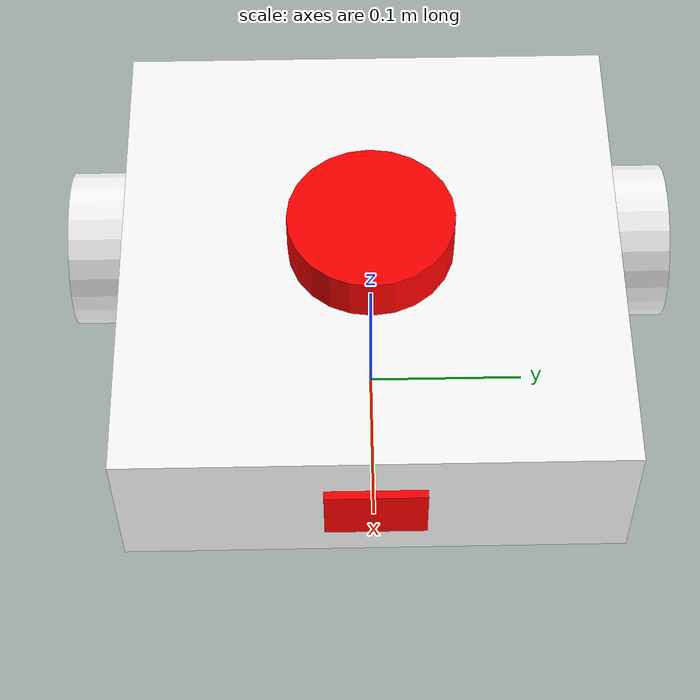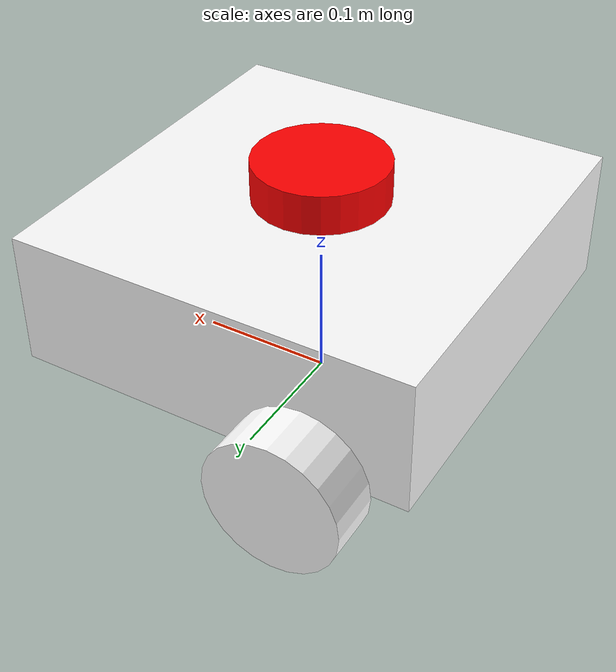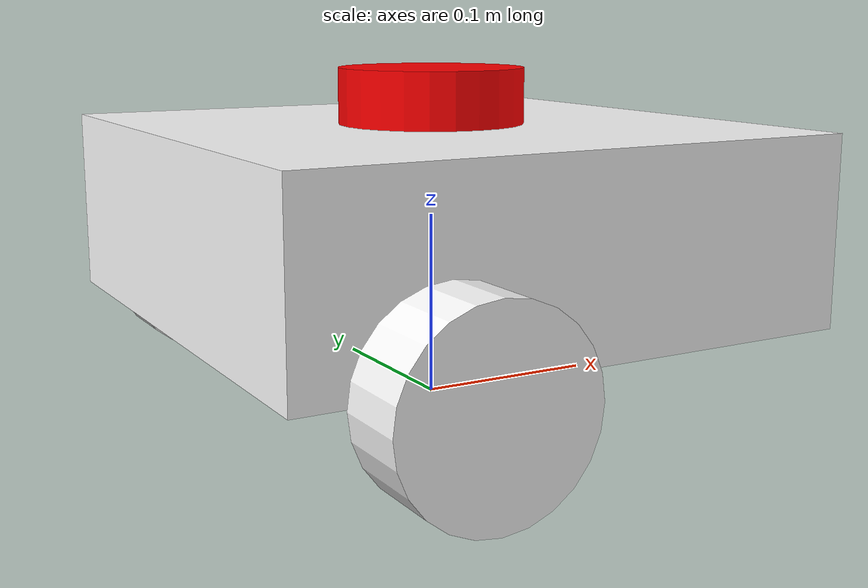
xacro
<?xml version="1.0"?>
<robot name = "my_bot" xmlns:xacro="http://www.ros.org/wiki/xacro">
    <xacro:include filename= "common_properties.xacro"/>
    <xacro:include filename= "bot_body.xacro"/>
    <xacro:include filename= "lidar.xacro"/>
    <xacro:include filename= "camera.xacro"/>
    <xacro:include filename= "gazebo_plugins.xacro"/>
</robot>

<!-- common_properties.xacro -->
<robot xmlns:xacro="http://www.ros.org/wiki/xacro">
    <material name="black">
        <color rgba="0 0 0 1"/>
    </material>

    <material name="white">
        <color rgba="1 1 1 1"/>
    </material>

    <material name="red">
        <color rgba="1 0 0 1"/>
    </material>

    <material name="green">
        <color rgba="0 1 0 1"/>
    </material>

    <material name="blue">
        <color rgba="0 0 1 1"/>
    </material>

    <xacro:macro name = "box_inertia" params="m x y z o_xyz o_rpy">
        <inertial>
            <origin xyz="${o_xyz}" rpy="${o_rpy}"/>
            <mass value="${m}"/>
            <inertia  ixx="${m/12 * (y*y + z*z)}" ixy="0" ixz="0"
                  iyy="${m/12 * (x*x + z*z)}" iyz="0"
                  izz="${m/12 * (x*x + y*y)}"/>
        </inertial>
    </xacro:macro>

    <xacro:macro name = "cylinder_inertia" params="m r h o_xyz o_rpy">
        <inertial>
            <origin xyz="${o_xyz}" rpy="${o_rpy}"/>
            <mass value="${m}"/>
            <inertia ixx="${m/12 * (3*r*r + h*h)}" ixy="0" ixz="0"
                 iyy="${m/12 * (3*r*r + h*h)}" iyz="0"
                 izz="${m/2 * r*r}"/>
        </inertial>
    </xacro:macro>

    <xacro:macro name = "sphere_inertia" params="m r o_xyz o_rpy">
        <inertial>
            <origin xyz="${o_xyz}" rpy="${o_rpy}"/>
            <mass value="${m}"/>
            <inertia ixx="${2/5 * m * r*r}" ixy="0" ixz="0"
                 iyy="${2/5 * m * r*r}" iyz="0"
                 izz="${2/5 * m * r*r}"/>
        </inertial>
    </xacro:macro>

</robot>

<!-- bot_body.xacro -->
<robot xmlns:xacro="http://www.ros.org/wiki/xacro">
    <xacro:property name="length" value="0.3"/>
    <xacro:property name="width" value="0.3"/>
    <xacro:property name="height" value="0.1"/>
    <xacro:property name="wheel_radius" value="0.05"/>
    <xacro:property name="wheel_width" value="0.04"/>
    <xacro:property name="caster_wheel_radius" value="0.05"/>

    <link name = "base_footprint"/>

    <link name = "base_link">
        <visual>
            <geometry>
                <box size = "${length} ${width} ${height}"/>
            </geometry>
            <material name = "white"/>
            <origin xyz = "0 0 ${wheel_radius}" rpy = "0 0 0"/>
        </visual>
        <collision>
            <geometry>
                <box size = "${length} ${width} ${height}"/>
            </geometry>
            <origin xyz = "0 0 ${wheel_radius}" rpy = "0 0 0"/>
        </collision>
        <xacro:box_inertia m = "0.5" x = "${length}" y = "${width}" z = "${height}"
                             o_xyz = "0 0 ${wheel_radius}" o_rpy = "0 0 0"/>
    </link>

    <link name ="left_wheel_link">
        <visual>
            <geometry>
                <cylinder radius = "${wheel_radius}" length = "${wheel_width}"/>
            </geometry>
            <material name = "white"/>
            <origin xyz = "0 0 0" rpy = "${pi/2} 0 0"/>
        </visual>
        <collision>
            <geometry>
                <cylinder radius = "${wheel_radius}" length = "${wheel_width}"/>
            </geometry>
            <origin xyz = "0 0 0" rpy = "${pi/2} 0 0"/>
        </collision>
        <xacro:cylinder_inertia m = "0.05" r = "${wheel_radius}" h = "${wheel_width}"
                             o_xyz = "0 0 0" o_rpy = "${pi/2} 0 0"/>
    </link>

    <gazebo reference="left_wheel_link">
        <material>Gazebo/White</material>
    </gazebo>

    <link name ="right_wheel_link">
        <visual>
            <geometry>
                <cylinder radius = "${wheel_radius}" length = "${wheel_width}"/>
            </geometry>
            <material name = "white"/>
            <origin xyz = "0 0 0" rpy = "${pi/2} 0 0"/>
        </visual>
        <collision>
            <geometry>
                <cylinder radius = "${wheel_radius}" length = "${wheel_width}"/>
            </geometry>
            <origin xyz = "0 0 0" rpy = "${pi/2} 0 0"/>
        </collision>
        <xacro:cylinder_inertia m = "0.05" r = "${wheel_radius}" h = "${wheel_width}"
                             o_xyz = "0 0 0" o_rpy = "${pi/2} 0 0"/>
    </link>

    <gazebo reference="right_wheel_link">
        <material>Gazebo/White</material>
    </gazebo>

    <link name ="caster_wheel_link">
        <visual>
            <geometry>
                <sphere radius = "${caster_wheel_radius}"/>
            </geometry>
            <material name = "blue"/>
            <origin xyz = "0 0 ${-wheel_radius + caster_wheel_radius}" rpy = "0 0 0"/>
        </visual>
        <collision>
            <geometry>
                <sphere radius = "${caster_wheel_radius}"/>
            </geometry>
            <origin xyz = "0 0 ${-wheel_radius + caster_wheel_radius}" rpy = "0 0 0"/>
        </collision>
        <xacro:sphere_inertia m = "0.01" r = "${caster_wheel_radius}"
                             o_xyz = "0 0 ${caster_wheel_radius}" o_rpy = "0 0 0"/>
    </link>

    <gazebo reference="caster_wheel_link">
        <material>Gazebo/Blue</material>
        <mu1 value="0.001"/>
        <mu2 value="0.001"/>
    </gazebo>

    <joint name = "base_joint" type = "fixed">
        <parent link = "base_footprint"/>
        <child link = "base_link"/>
        <origin xyz = "0 0 ${wheel_radius}" rpy = "0 0 0"/>
    </joint>

    <joint name = "base_left_wheel_joint" type = "continuous">
        <parent link = "base_link"/>
        <child link = "left_wheel_link"/>
        <origin xyz = "${-length / 4} ${width / 2 + wheel_width / 2 + 0.01/4} 0" rpy = "0 0 0"/>
        <axis xyz = "0 1 0"/>
    </joint>

    <joint name = "base_right_wheel_joint" type = "continuous">
        <parent link = "base_link"/>
        <child link = "right_wheel_link"/>
        <origin xyz = "${-length / 4} ${-width / 2 - wheel_width / 2 - 0.01/4} 0" rpy = "0 0 0"/>
        <axis xyz = "0 1 0"/>
    </joint>

    <joint name = "base_caster_wheel_joint" type = "fixed">
        <parent link = "base_link"/>
        <child link = "caster_wheel_link"/>
        <origin xyz = "${length / 4} 0 0" rpy = "0 0 0"/>
        <axis xyz = "0 0 1"/>
    </joint>

</robot>

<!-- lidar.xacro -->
<robot xmlns:xacro="http://www.ros.org/wiki/xacro">
    <xacro:property name = "lidar_radius" value = "0.05"/>
    <xacro:property name = "lidar_length" value = "0.03"/>

    <link name = "laser_frame">
        <visual>
            <geometry>
                <cylinder radius = "${lidar_radius}" length = "${lidar_length}"/>
            </geometry>
            <origin xyz = "0 0 0" rpy = "0 0 0"/>
            <material name = "red"/>
        </visual>
        <collision>
            <geometry>
                <cylinder radius = "${lidar_radius}" length = "${lidar_length}"/>
            </geometry>
            <origin xyz = "0 0 0" rpy = "0 0 0"/>
        </collision>
        <xacro:cylinder_inertia m = "0.1" r = "${lidar_radius}" h = "${lidar_length}"
                             o_xyz = "0 0 0" o_rpy = "0 0 0"/>
    </link>

    <joint name = "lidar_joint" type = "fixed">
        <parent link = "base_link"/>
        <child link = "laser_frame"/>
        <origin xyz = "0 0 ${lidar_length/2 + height / 2 + wheel_radius}" rpy = "0 0 0"/>
        <axis xyz = "0 0 1"/>
    </joint>

    <gazebo reference="laser_frame">
        <material>Gazebo/Red</material>
        <sensor name="lidar_sensor" type="ray">
            <pose>0 0 0.1 0 0 0</pose>
            <visualize>true</visualize>
            <update_rate>20</update_rate>
            <ray>
            <scan>
                <horizontal>
                <samples>360</samples>
                <min_angle>-3.14</min_angle>
                <max_angle>3.14</max_angle>
                </horizontal>
            </scan>
            <range>
                <min>0.3</min>
                <max>10.0</max>
            </range>
            </ray>
            <plugin name="gazebo_ros_lidar_controller" filename="libgazebo_ros_ray_sensor.so">
            <ros>
                <namespace>/</namespace>
                <remapping>~/out:=scan</remapping>
            </ros>
            <output_type>sensor_msgs/LaserScan</output_type>
            <frame_name>laser_frame</frame_name>
            </plugin>
        </sensor>
    </gazebo>

</robot>

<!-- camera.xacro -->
<robot xmlns:xacro="http://www.ros.org/wiki/xacro">
    <xacro:property name = "camera_box_length" value = "0.04"/>
    <xacro:property name = "camera_box_width" value = "0.06"/>
    <xacro:property name = "camera_box_height" value = "0.01"/>

    <link name = "camera_link">
        <visual>
             <geometry>
                <box size = "${camera_box_length} ${camera_box_width} ${camera_box_height}"/>
            </geometry>
            <origin xyz = "0 0 0" rpy = "0 ${pi / 2} 0"/>
            <material name = "red"/>
        </visual>
        <collision>
             <geometry>
                <box size = "${camera_box_length} ${camera_box_width} ${camera_box_height}"/>
            </geometry>
            <origin xyz = "0 0 0" rpy = "0 0 0"/>
        </collision>
        <xacro:box_inertia m = "0.1" x = "${camera_box_length}" y = "${camera_box_width}" z = "${camera_box_height}"
                             o_xyz = "0 0 0" o_rpy = "0 0 0"/>
    </link>

    <link name = "camera_optical_frame"/>

     <joint name = "camera_optical_joint" type = "fixed">
        <parent link = "camera_link"/>
        <child link = "camera_optical_frame"/>
        <origin xyz = "0 0 0" rpy = "0 ${-pi / 2} 0"/>
        <axis xyz = "0 0 1"/>
    </joint>

    <joint name = "camera_joint" type = "fixed">
        <parent link = "base_link"/>
        <child link = "camera_link"/>
        <origin xyz = "${length / 2} 0 ${height / 2}" rpy = "0 0 0"/>
        <axis xyz = "0 0 1"/>
    </joint>

    <gazebo reference="camera_link">
        <material>Gazebo/Red</material>
        <sensor type="camera" name="camera">
            <pose>0 0 0 0 0 0</pose>
            <camera>
            <horizontal_fov>1.3963</horizontal_fov>
            <image>
                <width>640</width>
                <height>480</height>
                <format>R8G8B8</format>
            </image>
            <clip>
                <near>0.002</near>
                <far>300</far>
            </clip>
            </camera>
            <plugin name="camera_plugin" filename="libgazebo_ros_camera.so">
            <topicName>camera_optical_frame</topicName>
            </plugin>
        </sensor>
    </gazebo>

</robot>
